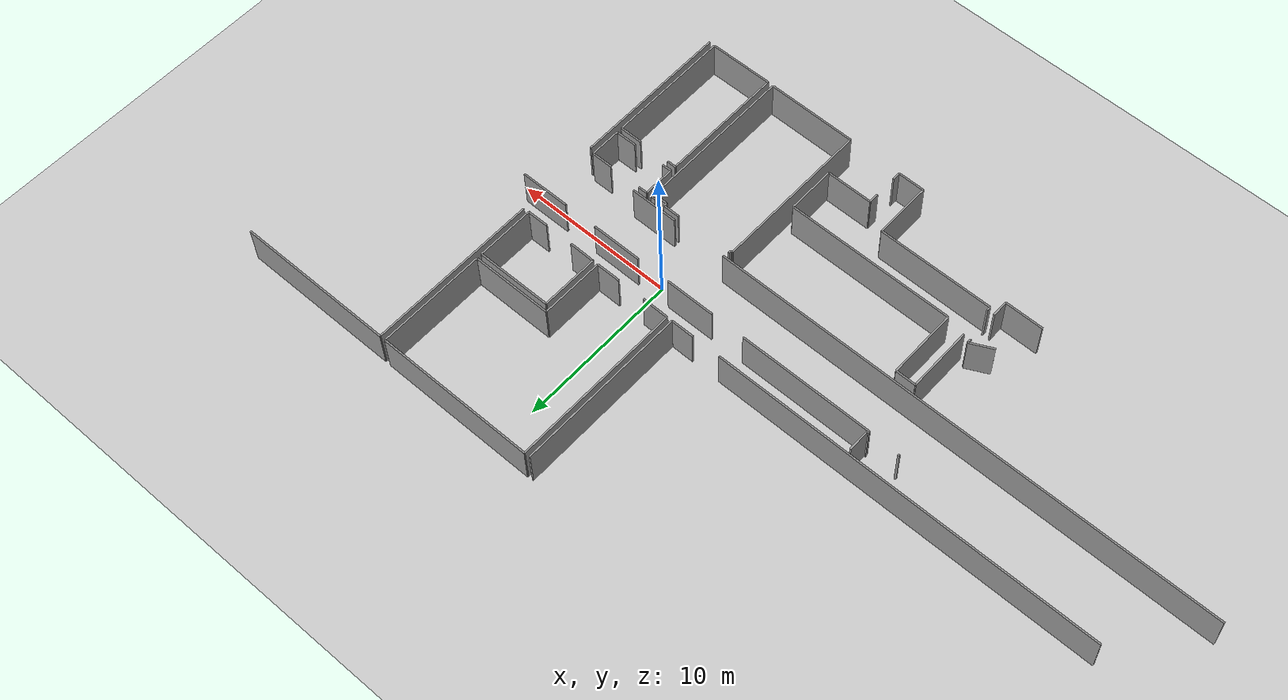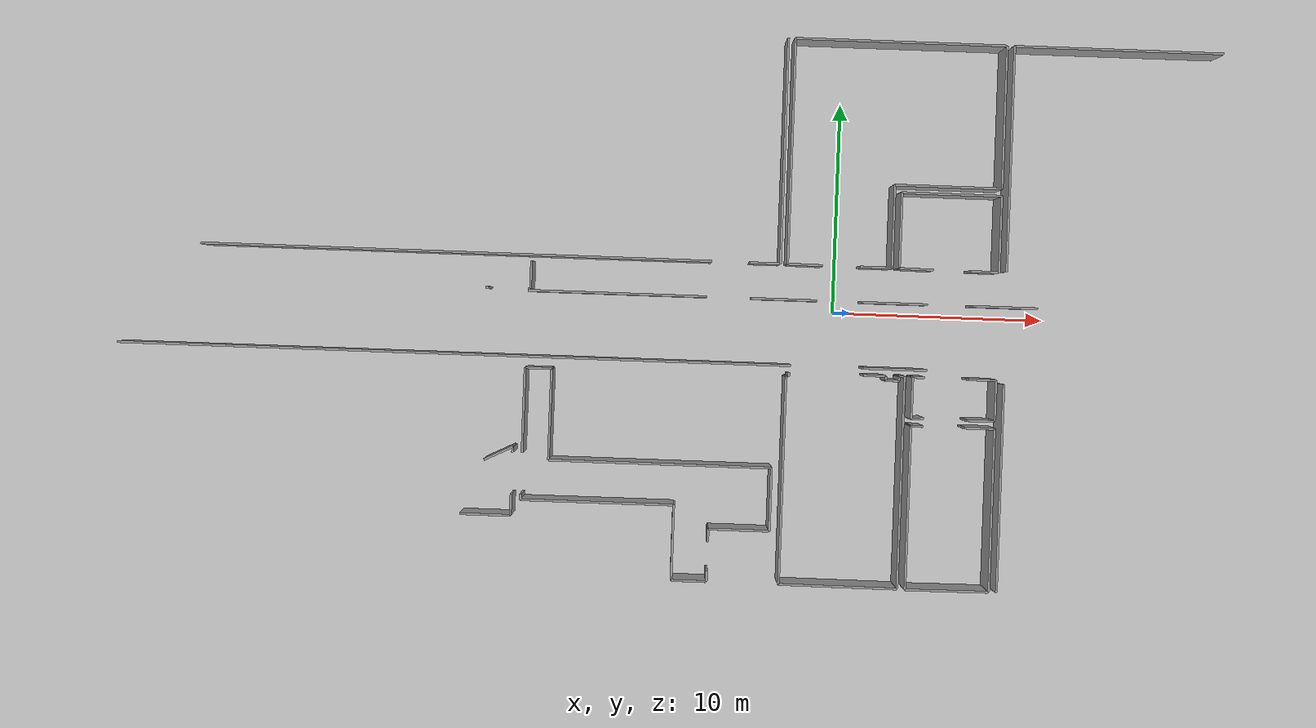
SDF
<sdf version="1.6">
 <world name="default">
  <model name="ground_plane">
   <static>1</static>
   <link name="link">
    <collision name="collision">
     <geometry><plane><normal>0 0 1</normal><size>100 100</size></plane></geometry>
     <surface><friction><ode><mu>100</mu><mu2>50</mu2></ode></friction></surface>
    </collision>
    <visual name="visual">
     <cast_shadows>0</cast_shadows>
     <geometry><plane><normal>0 0 1</normal><size>100 100</size></plane></geometry>
     <material>
      <script><uri>file://media/materials/scripts/gazebo.material</uri><name>Gazebo/Grey</name></script>
     </material>
    </visual>
   </link>
  </model>
  <model name="0510030965_A-40">
   <static>1</static>
   <link name="Wall_2">
    <collision name="Wall_2_Collision">
     <geometry><box><size>10.6120401762 0.1 2.5</size></box></geometry>
     <pose>5.30602008812 0 1.25 0 0 0</pose>
    </collision>
    <visual name="Wall_2_Visual">
     <pose>5.30602008812 0 1.25 0 0 0</pose>
     <geometry><box><size>10.6120401762 0.1 2.5</size></box></geometry>
     <material>
      <script><uri>file://media/materials/scripts/gazebo.material</uri><name>Gazebo/Grey</name></script>
      <ambient>1 1 1 1</ambient>
     </material>
    </visual>
    <pose>35.9684075527 -0.0 0 0 0 -1.57079632679</pose>
   </link>
   <link name="Wall_3">
    <collision name="Wall_3_Collision">
     <geometry><box><size>1.43537389052 0.1 2.5</size></box></geometry>
     <pose>0.717686945259 0 1.25 0 0 0</pose>
    </collision>
    <visual name="Wall_3_Visual">
     <pose>0.717686945259 0 1.25 0 0 0</pose>
     <geometry><box><size>1.43537389052 0.1 2.5</size></box></geometry>
     <material>
      <script><uri>file://media/materials/scripts/gazebo.material</uri><name>Gazebo/Grey</name></script>
      <ambient>1 1 1 1</ambient>
     </material>
    </visual>
    <pose>35.9684075527 -10.6120401762 0 0 0 3.14159265359</pose>
   </link>
   <link name="Wall_4">
    <collision name="Wall_4_Collision">
     <geometry><box><size>24.041115894 0.1 2.5</size></box></geometry>
     <pose>12.020557947 0 1.25 0 0 0</pose>
    </collision>
    <visual name="Wall_4_Visual">
     <pose>12.020557947 0 1.25 0 0 0</pose>
     <geometry><box><size>24.041115894 0.1 2.5</size></box></geometry>
     <material>
      <script><uri>file://media/materials/scripts/gazebo.material</uri><name>Gazebo/Grey</name></script>
      <ambient>1 1 1 1</ambient>
     </material>
    </visual>
    <pose>32.7479588079 -10.6120401762 0 0 0 3.14159265359</pose>
   </link>
   <link name="Wall_39">
    <collision name="Wall_39_Collision">
     <geometry><box><size>1.47790270101 0.1 2.5</size></box></geometry>
     <pose>0.738951350506 0 1.25 0 0 0</pose>
    </collision>
    <visual name="Wall_39_Visual">
     <pose>0.738951350506 0 1.25 0 0 0</pose>
     <geometry><box><size>1.47790270101 0.1 2.5</size></box></geometry>
     <material>
      <script><uri>file://media/materials/scripts/gazebo.material</uri><name>Gazebo/Grey</name></script>
      <ambient>1 1 1 1</ambient>
     </material>
    </visual>
    <pose>22.3818775158 -20.3123690526 0 0 0 0.457883984062</pose>
   </link>
   <link name="Wall_40">
    <collision name="Wall_40_Collision">
     <geometry><box><size>0.258783792363 0.1 2.5</size></box></geometry>
     <pose>0.129391896182 0 1.25 0 0 0</pose>
    </collision>
    <visual name="Wall_40_Visual">
     <pose>0.129391896182 0 1.25 0 0 0</pose>
     <geometry><box><size>0.258783792363 0.1 2.5</size></box></geometry>
     <material>
      <script><uri>file://media/materials/scripts/gazebo.material</uri><name>Gazebo/Grey</name></script>
      <ambient>1 1 1 1</ambient>
     </material>
    </visual>
    <pose>23.7075413 -19.6590606072 0 0 0 -1.57079632679</pose>
   </link>
   <link name="Wall_41">
    <collision name="Wall_41_Collision">
     <geometry><box><size>1.01024722868 0.1 2.5</size></box></geometry>
     <pose>0.505123614339 0 1.25 0 0 0</pose>
    </collision>
    <visual name="Wall_41_Visual">
     <pose>0.505123614339 0 1.25 0 0 0</pose>
     <geometry><box><size>1.01024722868 0.1 2.5</size></box></geometry>
     <material>
      <script><uri>file://media/materials/scripts/gazebo.material</uri><name>Gazebo/Grey</name></script>
      <ambient>1 1 1 1</ambient>
     </material>
    </visual>
    <pose>23.7075413 -21.8745952535 0 0 0 -1.57079632679</pose>
   </link>
   <link name="Wall_42">
    <collision name="Wall_42_Collision">
     <geometry><box><size>2.37844907496 0.1 2.5</size></box></geometry>
     <pose>1.18922453748 0 1.25 0 0 0</pose>
    </collision>
    <visual name="Wall_42_Visual">
     <pose>1.18922453748 0 1.25 0 0 0</pose>
     <geometry><box><size>2.37844907496 0.1 2.5</size></box></geometry>
     <material>
      <script><uri>file://media/materials/scripts/gazebo.material</uri><name>Gazebo/Grey</name></script>
      <ambient>1 1 1 1</ambient>
     </material>
    </visual>
    <pose>23.7075413 -22.8848424822 0 0 0 3.14159265359</pose>
   </link>
   <link name="Wall_47">
    <collision name="Wall_47_Collision">
     <geometry><box><size>0.250403159245 0.1 2.5</size></box></geometry>
     <pose>0.125201579622 0 1.25 0 0 0</pose>
    </collision>
    <visual name="Wall_47_Visual">
     <pose>0.125201579622 0 1.25 0 0 0</pose>
     <geometry><box><size>0.250403159245 0.1 2.5</size></box></geometry>
     <material>
      <script><uri>file://media/materials/scripts/gazebo.material</uri><name>Gazebo/Grey</name></script>
      <ambient>1 1 1 1</ambient>
     </material>
    </visual>
    <pose>24.1510799589 -22.1249984128 0 0 0 1.57079632679</pose>
   </link>
   <link name="Wall_48">
    <collision name="Wall_48_Collision">
     <geometry><box><size>3.9992127284 0.1 2.5</size></box></geometry>
     <pose>1.9996063642 0 1.25 0 0 0</pose>
    </collision>
    <visual name="Wall_48_Visual">
     <pose>1.9996063642 0 1.25 0 0 0</pose>
     <geometry><box><size>3.9992127284 0.1 2.5</size></box></geometry>
     <material>
      <script><uri>file://media/materials/scripts/gazebo.material</uri><name>Gazebo/Grey</name></script>
      <ambient>1 1 1 1</ambient>
     </material>
    </visual>
    <pose>24.1510799589 -19.9208919025 0 0 0 1.57079632679</pose>
   </link>
   <link name="Wall_49">
    <collision name="Wall_49_Collision">
     <geometry><box><size>1.25239673409 0.1 2.5</size></box></geometry>
     <pose>0.626198367046 0 1.25 0 0 0</pose>
    </collision>
    <visual name="Wall_49_Visual">
     <pose>0.626198367046 0 1.25 0 0 0</pose>
     <geometry><box><size>1.25239673409 0.1 2.5</size></box></geometry>
     <material>
      <script><uri>file://media/materials/scripts/gazebo.material</uri><name>Gazebo/Grey</name></script>
      <ambient>1 1 1 1</ambient>
     </material>
    </visual>
    <pose>24.1510799589 -15.9216791741 0 0 0 0.0</pose>
   </link>
   <link name="Wall_50">
    <collision name="Wall_50_Collision">
     <geometry><box><size>4.29520145264 0.1 2.5</size></box></geometry>
     <pose>2.14760072632 0 1.25 0 0 0</pose>
    </collision>
    <visual name="Wall_50_Visual">
     <pose>2.14760072632 0 1.25 0 0 0</pose>
     <geometry><box><size>4.29520145264 0.1 2.5</size></box></geometry>
     <material>
      <script><uri>file://media/materials/scripts/gazebo.material</uri><name>Gazebo/Grey</name></script>
      <ambient>1 1 1 1</ambient>
     </material>
    </visual>
    <pose>25.403476693 -15.9216791741 0 0 0 -1.57079632679</pose>
   </link>
   <link name="Wall_51">
    <collision name="Wall_51_Collision">
     <geometry><box><size>10.4906479753 0.1 2.5</size></box></geometry>
     <pose>5.24532398766 0 1.25 0 0 0</pose>
    </collision>
    <visual name="Wall_51_Visual">
     <pose>5.24532398766 0 1.25 0 0 0</pose>
     <geometry><box><size>10.4906479753 0.1 2.5</size></box></geometry>
     <material>
      <script><uri>file://media/materials/scripts/gazebo.material</uri><name>Gazebo/Grey</name></script>
      <ambient>1 1 1 1</ambient>
     </material>
    </visual>
    <pose>25.403476693 -20.2168806268 0 0 0 0.0</pose>
   </link>
   <link name="Wall_52">
    <collision name="Wall_52_Collision">
     <geometry><box><size>2.96750599977 0.1 2.5</size></box></geometry>
     <pose>1.48375299989 0 1.25 0 0 0</pose>
    </collision>
    <visual name="Wall_52_Visual">
     <pose>1.48375299989 0 1.25 0 0 0</pose>
     <geometry><box><size>2.96750599977 0.1 2.5</size></box></geometry>
     <material>
      <script><uri>file://media/materials/scripts/gazebo.material</uri><name>Gazebo/Grey</name></script>
      <ambient>1 1 1 1</ambient>
     </material>
    </visual>
    <pose>35.8941246683 -20.2168806268 0 0 0 -1.57079632679</pose>
   </link>
   <link name="Wall_53">
    <collision name="Wall_53_Collision">
     <geometry><box><size>2.87074778104 0.1 2.5</size></box></geometry>
     <pose>1.43537389052 0 1.25 0 0 0</pose>
    </collision>
    <visual name="Wall_53_Visual">
     <pose>1.43537389052 0 1.25 0 0 0</pose>
     <geometry><box><size>2.87074778104 0.1 2.5</size></box></geometry>
     <material>
      <script><uri>file://media/materials/scripts/gazebo.material</uri><name>Gazebo/Grey</name></script>
      <ambient>1 1 1 1</ambient>
     </material>
    </visual>
    <pose>35.8941246683 -23.1843866265 0 0 0 3.14159265359</pose>
   </link>
   <link name="Wall_54">
    <collision name="Wall_54_Collision">
     <geometry><box><size>0.607214963239 0.1 2.5</size></box></geometry>
     <pose>0.30360748162 0 1.25 0 0 0</pose>
    </collision>
    <visual name="Wall_54_Visual">
     <pose>0.30360748162 0 1.25 0 0 0</pose>
     <geometry><box><size>0.607214963239 0.1 2.5</size></box></geometry>
     <material>
      <script><uri>file://media/materials/scripts/gazebo.material</uri><name>Gazebo/Grey</name></script>
      <ambient>1 1 1 1</ambient>
     </material>
    </visual>
    <pose>33.0233768872 -23.1843866265 0 0 0 -1.57079632679</pose>
   </link>
   <link name="Wall_55">
    <collision name="Wall_55_Collision">
     <geometry><box><size>0.507917158711 0.1 2.5</size></box></geometry>
     <pose>0.253958579356 0 1.25 0 0 0</pose>
    </collision>
    <visual name="Wall_55_Visual">
     <pose>0.253958579356 0 1.25 0 0 0</pose>
     <geometry><box><size>0.507917158711 0.1 2.5</size></box></geometry>
     <material>
      <script><uri>file://media/materials/scripts/gazebo.material</uri><name>Gazebo/Grey</name></script>
      <ambient>1 1 1 1</ambient>
     </material>
    </visual>
    <pose>33.0233768872 -25.1497720722 0 0 0 -1.57079632679</pose>
   </link>
   <link name="Wall_56">
    <collision name="Wall_56_Collision">
     <geometry><box><size>1.65631785456 0.1 2.5</size></box></geometry>
     <pose>0.828158927279 0 1.25 0 0 0</pose>
    </collision>
    <visual name="Wall_56_Visual">
     <pose>0.828158927279 0 1.25 0 0 0</pose>
     <geometry><box><size>1.65631785456 0.1 2.5</size></box></geometry>
     <material>
      <script><uri>file://media/materials/scripts/gazebo.material</uri><name>Gazebo/Grey</name></script>
      <ambient>1 1 1 1</ambient>
     </material>
    </visual>
    <pose>33.0233768872 -25.6576892309 0 0 0 3.14159265359</pose>
   </link>
   <link name="Wall_57">
    <collision name="Wall_57_Collision">
     <geometry><box><size>3.53865884474 0.1 2.5</size></box></geometry>
     <pose>1.76932942237 0 1.25 0 0 0</pose>
    </collision>
    <visual name="Wall_57_Visual">
     <pose>1.76932942237 0 1.25 0 0 0</pose>
     <geometry><box><size>3.53865884474 0.1 2.5</size></box></geometry>
     <material>
      <script><uri>file://media/materials/scripts/gazebo.material</uri><name>Gazebo/Grey</name></script>
      <ambient>1 1 1 1</ambient>
     </material>
    </visual>
    <pose>31.3670590327 -25.6576892309 0 0 0 1.57079632679</pose>
   </link>
   <link name="Wall_58">
    <collision name="Wall_58_Collision">
     <geometry><box><size>7.21598154176 0.1 2.5</size></box></geometry>
     <pose>3.60799077088 0 1.25 0 0 0</pose>
    </collision>
    <visual name="Wall_58_Visual">
     <pose>3.60799077088 0 1.25 0 0 0</pose>
     <geometry><box><size>7.21598154176 0.1 2.5</size></box></geometry>
     <material>
      <script><uri>file://media/materials/scripts/gazebo.material</uri><name>Gazebo/Grey</name></script>
      <ambient>1 1 1 1</ambient>
     </material>
    </visual>
    <pose>31.3670590327 -22.1190303861 0 0 0 -3.14076559669</pose>
   </link>
   <link name="Wall_69">
    <collision name="Wall_69_Collision">
     <geometry><box><size>8.39180729623 0.1 2.5</size></box></geometry>
     <pose>4.19590364811 0 1.25 0 0 0</pose>
    </collision>
    <visual name="Wall_69_Visual">
     <pose>4.19590364811 0 1.25 0 0 0</pose>
     <geometry><box><size>8.39180729623 0.1 2.5</size></box></geometry>
     <material>
      <script><uri>file://media/materials/scripts/gazebo.material</uri><name>Gazebo/Grey</name></script>
      <ambient>1 1 1 1</ambient>
     </material>
    </visual>
    <pose>24.1677142458 -12.2852462763 0 0 0 0.0</pose>
   </link>
   <link name="Wall_70">
    <collision name="Wall_70_Collision">
     <geometry><box><size>3.08064454687 0.1 2.5</size></box></geometry>
     <pose>1.54032227344 0 1.25 0 0 0</pose>
    </collision>
    <visual name="Wall_70_Visual">
     <pose>1.54032227344 0 1.25 0 0 0</pose>
     <geometry><box><size>3.08064454687 0.1 2.5</size></box></geometry>
     <material>
      <script><uri>file://media/materials/scripts/gazebo.material</uri><name>Gazebo/Grey</name></script>
      <ambient>1 1 1 1</ambient>
     </material>
    </visual>
    <pose>34.6795677625 -12.2852462763 0 0 0 0.0</pose>
   </link>
   <link name="Wall_71">
    <collision name="Wall_71_Collision">
     <geometry><box><size>3.10591342552 0.1 2.5</size></box></geometry>
     <pose>1.55295671276 0 1.25 0 0 0</pose>
    </collision>
    <visual name="Wall_71_Visual">
     <pose>1.55295671276 0 1.25 0 0 0</pose>
     <geometry><box><size>3.10591342552 0.1 2.5</size></box></geometry>
     <material>
      <script><uri>file://media/materials/scripts/gazebo.material</uri><name>Gazebo/Grey</name></script>
      <ambient>1 1 1 1</ambient>
     </material>
    </visual>
    <pose>39.8640051808 -12.2852462763 0 0 0 0.0</pose>
   </link>
   <link name="Wall_72">
    <collision name="Wall_72_Collision">
     <geometry><box><size>3.0728988102 0.1 2.5</size></box></geometry>
     <pose>1.5364494051 0 1.25 0 0 0</pose>
    </collision>
    <visual name="Wall_72_Visual">
     <pose>1.5364494051 0 1.25 0 0 0</pose>
     <geometry><box><size>3.0728988102 0.1 2.5</size></box></geometry>
     <material>
      <script><uri>file://media/materials/scripts/gazebo.material</uri><name>Gazebo/Grey</name></script>
      <ambient>1 1 1 1</ambient>
     </material>
    </visual>
    <pose>45.0791715871 -12.2852462763 0 0 0 0.0</pose>
   </link>
   <link name="Wall_80">
    <collision name="Wall_80_Collision">
     <geometry><box><size>2.97639455005 0.1 2.5</size></box></geometry>
     <pose>1.48819727502 0 1.25 0 0 0</pose>
    </collision>
    <visual name="Wall_80_Visual">
     <pose>1.48819727502 0 1.25 0 0 0</pose>
     <geometry><box><size>2.97639455005 0.1 2.5</size></box></geometry>
     <material>
      <script><uri>file://media/materials/scripts/gazebo.material</uri><name>Gazebo/Grey</name></script>
      <ambient>1 1 1 1</ambient>
     </material>
    </visual>
    <pose>43.024138763 -15.37896969 0 0 0 3.14159265359</pose>
   </link>
   <link name="Wall_81">
    <collision name="Wall_81_Collision">
     <geometry><box><size>31.6743513581 0.1 2.5</size></box></geometry>
     <pose>15.8371756791 0 1.25 0 0 0</pose>
    </collision>
    <visual name="Wall_81_Visual">
     <pose>15.8371756791 0 1.25 0 0 0</pose>
     <geometry><box><size>31.6743513581 0.1 2.5</size></box></geometry>
     <material>
      <script><uri>file://media/materials/scripts/gazebo.material</uri><name>Gazebo/Grey</name></script>
      <ambient>1 1 1 1</ambient>
     </material>
    </visual>
    <pose>36.6320013206 -15.37896969 0 0 0 -3.14119978143</pose>
   </link>
   <link name="Wall_94">
    <collision name="Wall_94_Collision">
     <geometry><box><size>1.32134648839 0.1 2.5</size></box></geometry>
     <pose>0.660673244194 0 1.25 0 0 0</pose>
    </collision>
    <visual name="Wall_94_Visual">
     <pose>0.660673244194 0 1.25 0 0 0</pose>
     <geometry><box><size>1.32134648839 0.1 2.5</size></box></geometry>
     <material>
      <script><uri>file://media/materials/scripts/gazebo.material</uri><name>Gazebo/Grey</name></script>
      <ambient>1 1 1 1</ambient>
     </material>
    </visual>
    <pose>24.2745038284 -10.8806013739 0 0 0 -1.57079632679</pose>
   </link>
   <link name="Wall_95">
    <collision name="Wall_95_Collision">
     <geometry><box><size>0.123423869567 0.1 2.5</size></box></geometry>
     <pose>0.0617119347834 0 1.25 0 0 0</pose>
    </collision>
    <visual name="Wall_95_Visual">
     <pose>0.0617119347834 0 1.25 0 0 0</pose>
     <geometry><box><size>0.123423869567 0.1 2.5</size></box></geometry>
     <material>
      <script><uri>file://media/materials/scripts/gazebo.material</uri><name>Gazebo/Grey</name></script>
      <ambient>1 1 1 1</ambient>
     </material>
    </visual>
    <pose>24.2745038284 -12.2019478623 0 0 0 3.14159265359</pose>
   </link>
   <link name="Wall_96">
    <collision name="Wall_96_Collision">
     <geometry><box><size>0.123275965035 0.1 2.5</size></box></geometry>
     <pose>0.0616379825173 0 1.25 0 0 0</pose>
    </collision>
    <visual name="Wall_96_Visual">
     <pose>0.0616379825173 0 1.25 0 0 0</pose>
     <geometry><box><size>0.123275965035 0.1 2.5</size></box></geometry>
     <material>
      <script><uri>file://media/materials/scripts/gazebo.material</uri><name>Gazebo/Grey</name></script>
      <ambient>1 1 1 1</ambient>
     </material>
    </visual>
    <pose>22.3059439005 -12.2019478623 0 0 0 -3.0228591662</pose>
   </link>
   <link name="Wall_97">
    <collision name="Wall_97_Collision">
     <geometry><box><size>10.6121671555 0.1 2.5</size></box></geometry>
     <pose>5.30608357777 0 1.25 0 0 0</pose>
    </collision>
    <visual name="Wall_97_Visual">
     <pose>5.30608357777 0 1.25 0 0 0</pose>
     <geometry><box><size>10.6121671555 0.1 2.5</size></box></geometry>
     <material>
      <script><uri>file://media/materials/scripts/gazebo.material</uri><name>Gazebo/Grey</name></script>
      <ambient>1 1 1 1</ambient>
     </material>
    </visual>
    <pose>36.3049026704 -10.6121671555 0 0 0 1.57079632679</pose>
   </link>
   <link name="Wall_98">
    <collision name="Wall_98_Collision">
     <geometry><box><size>9.94616078118 0.1 2.5</size></box></geometry>
     <pose>4.97308039059 0 1.25 0 0 0</pose>
    </collision>
    <visual name="Wall_98_Visual">
     <pose>4.97308039059 0 1.25 0 0 0</pose>
     <geometry><box><size>9.94616078118 0.1 2.5</size></box></geometry>
     <material>
      <script><uri>file://media/materials/scripts/gazebo.material</uri><name>Gazebo/Grey</name></script>
      <ambient>1 1 1 1</ambient>
     </material>
    </visual>
    <pose>36.3049026704 -0.0 0 0 0 0.0</pose>
   </link>
   <link name="Wall_99">
    <collision name="Wall_99_Collision">
     <geometry><box><size>6.71898213401 0.1 2.5</size></box></geometry>
     <pose>3.35949106701 0 1.25 0 0 0</pose>
    </collision>
    <visual name="Wall_99_Visual">
     <pose>3.35949106701 0 1.25 0 0 0</pose>
     <geometry><box><size>6.71898213401 0.1 2.5</size></box></geometry>
     <material>
      <script><uri>file://media/materials/scripts/gazebo.material</uri><name>Gazebo/Grey</name></script>
      <ambient>1 1 1 1</ambient>
     </material>
    </visual>
    <pose>46.2510634516 -0.0 0 0 0 -1.57079632679</pose>
   </link>
   <link name="Wall_100">
    <collision name="Wall_100_Collision">
     <geometry><box><size>5.03206227064 0.1 2.5</size></box></geometry>
     <pose>2.51603113532 0 1.25 0 0 0</pose>
    </collision>
    <visual name="Wall_100_Visual">
     <pose>2.51603113532 0 1.25 0 0 0</pose>
     <geometry><box><size>5.03206227064 0.1 2.5</size></box></geometry>
     <material>
      <script><uri>file://media/materials/scripts/gazebo.material</uri><name>Gazebo/Grey</name></script>
      <ambient>1 1 1 1</ambient>
     </material>
    </visual>
    <pose>46.2510634516 -6.71898213401 0 0 0 3.14159265359</pose>
   </link>
   <link name="Wall_101">
    <collision name="Wall_101_Collision">
     <geometry><box><size>3.90524805404 0.1 2.5</size></box></geometry>
     <pose>1.95262402702 0 1.25 0 0 0</pose>
    </collision>
    <visual name="Wall_101_Visual">
     <pose>1.95262402702 0 1.25 0 0 0</pose>
     <geometry><box><size>3.90524805404 0.1 2.5</size></box></geometry>
     <material>
      <script><uri>file://media/materials/scripts/gazebo.material</uri><name>Gazebo/Grey</name></script>
      <ambient>1 1 1 1</ambient>
     </material>
    </visual>
    <pose>41.2190011809 -6.71898213401 0 0 0 -1.57079632679</pose>
   </link>
   <link name="Wall_102">
    <collision name="Wall_102_Collision">
     <geometry><box><size>1.49772072175 0.1 2.5</size></box></geometry>
     <pose>0.748860360875 0 1.25 0 0 0</pose>
    </collision>
    <visual name="Wall_102_Visual">
     <pose>0.748860360875 0 1.25 0 0 0</pose>
     <geometry><box><size>1.49772072175 0.1 2.5</size></box></geometry>
     <material>
      <script><uri>file://media/materials/scripts/gazebo.material</uri><name>Gazebo/Grey</name></script>
      <ambient>1 1 1 1</ambient>
     </material>
    </visual>
    <pose>41.2190011809 -10.6242301881 0 0 0 3.14159265359</pose>
   </link>
   <link name="Wall_103">
    <collision name="Wall_103_Collision">
     <geometry><box><size>1.66347243421 0.1 2.5</size></box></geometry>
     <pose>0.831736217104 0 1.25 0 0 0</pose>
    </collision>
    <visual name="Wall_103_Visual">
     <pose>0.831736217104 0 1.25 0 0 0</pose>
     <geometry><box><size>1.66347243421 0.1 2.5</size></box></geometry>
     <material>
      <script><uri>file://media/materials/scripts/gazebo.material</uri><name>Gazebo/Grey</name></script>
      <ambient>1 1 1 1</ambient>
     </material>
    </visual>
    <pose>37.9683313652 -10.6242301881 0 0 0 3.13434087232</pose>
   </link>
   <link name="Wall_104">
    <collision name="Wall_104_Collision">
     <geometry><box><size>3.56303886836 0.1 2.5</size></box></geometry>
     <pose>1.78151943418 0 1.25 0 0 0</pose>
    </collision>
    <visual name="Wall_104_Visual">
     <pose>1.78151943418 0 1.25 0 0 0</pose>
     <geometry><box><size>3.56303886836 0.1 2.5</size></box></geometry>
     <material>
      <script><uri>file://media/materials/scripts/gazebo.material</uri><name>Gazebo/Grey</name></script>
      <ambient>1 1 1 1</ambient>
     </material>
    </visual>
    <pose>41.561845263 -10.6267697738 0 0 0 1.57079632679</pose>
   </link>
   <link name="Wall_105">
    <collision name="Wall_105_Collision">
     <geometry><box><size>4.69251965005 0.1 2.5</size></box></geometry>
     <pose>2.34625982502 0 1.25 0 0 0</pose>
    </collision>
    <visual name="Wall_105_Visual">
     <pose>2.34625982502 0 1.25 0 0 0</pose>
     <geometry><box><size>4.69251965005 0.1 2.5</size></box></geometry>
     <material>
      <script><uri>file://media/materials/scripts/gazebo.material</uri><name>Gazebo/Grey</name></script>
      <ambient>1 1 1 1</ambient>
     </material>
    </visual>
    <pose>41.561845263 -7.06373090549 0 0 0 0.0</pose>
   </link>
   <link name="Wall_106">
    <collision name="Wall_106_Collision">
     <geometry><box><size>3.58830774701 0.1 2.5</size></box></geometry>
     <pose>1.7941538735 0 1.25 0 0 0</pose>
    </collision>
    <visual name="Wall_106_Visual">
     <pose>1.7941538735 0 1.25 0 0 0</pose>
     <geometry><box><size>3.58830774701 0.1 2.5</size></box></geometry>
     <material>
      <script><uri>file://media/materials/scripts/gazebo.material</uri><name>Gazebo/Grey</name></script>
      <ambient>1 1 1 1</ambient>
     </material>
    </visual>
    <pose>46.2543649131 -7.06373090549 0 0 0 -1.57079632679</pose>
   </link>
   <link name="Wall_107">
    <collision name="Wall_107_Collision">
     <geometry><box><size>1.31702919254 0.1 2.5</size></box></geometry>
     <pose>0.658514596269 0 1.25 0 0 0</pose>
    </collision>
    <visual name="Wall_107_Visual">
     <pose>0.658514596269 0 1.25 0 0 0</pose>
     <geometry><box><size>1.31702919254 0.1 2.5</size></box></geometry>
     <material>
      <script><uri>file://media/materials/scripts/gazebo.material</uri><name>Gazebo/Grey</name></script>
      <ambient>1 1 1 1</ambient>
     </material>
    </visual>
    <pose>46.2543649131 -10.6520386525 0 0 0 3.14159265359</pose>
   </link>
   <link name="Wall_108">
    <collision name="Wall_108_Collision">
     <geometry><box><size>1.60661372092 0.1 2.5</size></box></geometry>
     <pose>0.803306860462 0 1.25 0 0 0</pose>
    </collision>
    <visual name="Wall_108_Visual">
     <pose>0.803306860462 0 1.25 0 0 0</pose>
     <geometry><box><size>1.60661372092 0.1 2.5</size></box></geometry>
     <material>
      <script><uri>file://media/materials/scripts/gazebo.material</uri><name>Gazebo/Grey</name></script>
      <ambient>1 1 1 1</ambient>
     </material>
    </visual>
    <pose>43.1682602568 -10.6520386525 0 0 0 3.12586396895</pose>
   </link>
   <link name="Wall_109">
    <collision name="Wall_109_Collision">
     <geometry><box><size>9.97727070715 0.1 2.5</size></box></geometry>
     <pose>4.98863535357 0 1.25 0 0 0</pose>
    </collision>
    <visual name="Wall_109_Visual">
     <pose>4.98863535357 0 1.25 0 0 0</pose>
     <geometry><box><size>9.97727070715 0.1 2.5</size></box></geometry>
     <material>
      <script><uri>file://media/materials/scripts/gazebo.material</uri><name>Gazebo/Grey</name></script>
      <ambient>1 1 1 1</ambient>
     </material>
    </visual>
    <pose>41.9930669308 -25.6818152959 0 0 0 1.57079632679</pose>
   </link>
   <link name="Wall_110">
    <collision name="Wall_110_Collision">
     <geometry><box><size>0.250403159245 0.1 2.5</size></box></geometry>
     <pose>0.125201579622 0 1.25 0 0 0</pose>
    </collision>
    <visual name="Wall_110_Visual">
     <pose>0.125201579622 0 1.25 0 0 0</pose>
     <geometry><box><size>0.250403159245 0.1 2.5</size></box></geometry>
     <material>
      <script><uri>file://media/materials/scripts/gazebo.material</uri><name>Gazebo/Grey</name></script>
      <ambient>1 1 1 1</ambient>
     </material>
    </visual>
    <pose>41.9930669308 -15.7045445888 0 0 0 3.14159265359</pose>
   </link>
   <link name="Wall_111">
    <collision name="Wall_111_Collision">
     <geometry><box><size>0.20875395223 0.1 2.5</size></box></geometry>
     <pose>0.104376976115 0 1.25 0 0 0</pose>
    </collision>
    <visual name="Wall_111_Visual">
     <pose>0.104376976115 0 1.25 0 0 0</pose>
     <geometry><box><size>0.20875395223 0.1 2.5</size></box></geometry>
     <material>
      <script><uri>file://media/materials/scripts/gazebo.material</uri><name>Gazebo/Grey</name></script>
      <ambient>1 1 1 1</ambient>
     </material>
    </visual>
    <pose>41.7426637715 -15.7045445888 0 0 0 -1.57079632679</pose>
   </link>
   <link name="Wall_112">
    <collision name="Wall_112_Collision">
     <geometry><box><size>0.63464248981 0.1 2.5</size></box></geometry>
     <pose>0.317321244905 0 1.25 0 0 0</pose>
    </collision>
    <visual name="Wall_112_Visual">
     <pose>0.317321244905 0 1.25 0 0 0</pose>
     <geometry><box><size>0.63464248981 0.1 2.5</size></box></geometry>
     <material>
      <script><uri>file://media/materials/scripts/gazebo.material</uri><name>Gazebo/Grey</name></script>
      <ambient>1 1 1 1</ambient>
     </material>
    </visual>
    <pose>41.7426637715 -15.913298541 0 0 0 3.14159265359</pose>
   </link>
   <link name="Wall_113">
    <collision name="Wall_113_Collision">
     <geometry><box><size>0.200373319112 0.1 2.5</size></box></geometry>
     <pose>0.100186659556 0 1.25 0 0 0</pose>
    </collision>
    <visual name="Wall_113_Visual">
     <pose>0.100186659556 0 1.25 0 0 0</pose>
     <geometry><box><size>0.200373319112 0.1 2.5</size></box></geometry>
     <material>
      <script><uri>file://media/materials/scripts/gazebo.material</uri><name>Gazebo/Grey</name></script>
      <ambient>1 1 1 1</ambient>
     </material>
    </visual>
    <pose>41.1080212817 -15.913298541 0 0 0 1.57079632679</pose>
   </link>
   <link name="Wall_114">
    <collision name="Wall_114_Collision">
     <geometry><box><size>1.03526214874 0.1 2.5</size></box></geometry>
     <pose>0.517631074372 0 1.25 0 0 0</pose>
    </collision>
    <visual name="Wall_114_Visual">
     <pose>0.517631074372 0 1.25 0 0 0</pose>
     <geometry><box><size>1.03526214874 0.1 2.5</size></box></geometry>
     <material>
      <script><uri>file://media/materials/scripts/gazebo.material</uri><name>Gazebo/Grey</name></script>
      <ambient>1 1 1 1</ambient>
     </material>
    </visual>
    <pose>41.1080212817 -15.7129252219 0 0 0 3.14159265359</pose>
   </link>
   <link name="Wall_115">
    <collision name="Wall_115_Collision">
     <geometry><box><size>0.182469239267 0.1 2.5</size></box></geometry>
     <pose>0.0912346196335 0 1.25 0 0 0</pose>
    </collision>
    <visual name="Wall_115_Visual">
     <pose>0.0912346196335 0 1.25 0 0 0</pose>
     <geometry><box><size>0.182469239267 0.1 2.5</size></box></geometry>
     <material>
      <script><uri>file://media/materials/scripts/gazebo.material</uri><name>Gazebo/Grey</name></script>
      <ambient>1 1 1 1</ambient>
     </material>
    </visual>
    <pose>36.5432427971 -15.7129252219 0 0 0 -1.57079632679</pose>
   </link>
   <link name="Wall_116">
    <collision name="Wall_116_Collision">
     <geometry><box><size>0.124820641753 0.1 2.5</size></box></geometry>
     <pose>0.0624103208767 0 1.25 0 0 0</pose>
    </collision>
    <visual name="Wall_116_Visual">
     <pose>0.0624103208767 0 1.25 0 0 0</pose>
     <geometry><box><size>0.124820641753 0.1 2.5</size></box></geometry>
     <material>
      <script><uri>file://media/materials/scripts/gazebo.material</uri><name>Gazebo/Grey</name></script>
      <ambient>1 1 1 1</ambient>
     </material>
    </visual>
    <pose>36.5432427971 -15.8953944612 0 0 0 3.14159265359</pose>
   </link>
   <link name="Wall_117">
    <collision name="Wall_117_Collision">
     <geometry><box><size>9.76673904486 0.1 2.5</size></box></geometry>
     <pose>4.88336952243 0 1.25 0 0 0</pose>
    </collision>
    <visual name="Wall_117_Visual">
     <pose>4.88336952243 0 1.25 0 0 0</pose>
     <geometry><box><size>9.76673904486 0.1 2.5</size></box></geometry>
     <material>
      <script><uri>file://media/materials/scripts/gazebo.material</uri><name>Gazebo/Grey</name></script>
      <ambient>1 1 1 1</ambient>
     </material>
    </visual>
    <pose>36.4184221553 -15.8953944612 0 0 0 -1.57079632679</pose>
   </link>
   <link name="Wall_118">
    <collision name="Wall_118_Collision">
     <geometry><box><size>5.5746795195 0.1 2.5</size></box></geometry>
     <pose>2.78733975975 0 1.25 0 0 0</pose>
    </collision>
    <visual name="Wall_118_Visual">
     <pose>2.78733975975 0 1.25 0 0 0</pose>
     <geometry><box><size>5.5746795195 0.1 2.5</size></box></geometry>
     <material>
      <script><uri>file://media/materials/scripts/gazebo.material</uri><name>Gazebo/Grey</name></script>
      <ambient>1 1 1 1</ambient>
     </material>
    </visual>
    <pose>36.4184221553 -25.662133506 0 0 0 -0.00353057619189</pose>
   </link>
   <link name="Wall_119">
    <collision name="Wall_119_Collision">
     <geometry><box><size>1.95700481252 0.1 2.5</size></box></geometry>
     <pose>0.978502406258 0 1.25 0 0 0</pose>
    </collision>
    <visual name="Wall_119_Visual">
     <pose>0.978502406258 0 1.25 0 0 0</pose>
     <geometry><box><size>1.95700481252 0.1 2.5</size></box></geometry>
     <material>
      <script><uri>file://media/materials/scripts/gazebo.material</uri><name>Gazebo/Grey</name></script>
      <ambient>1 1 1 1</ambient>
     </material>
    </visual>
    <pose>42.375401572 -17.6766599368 0 0 0 1.57079632679</pose>
   </link>
   <link name="Wall_120">
    <collision name="Wall_120_Collision">
     <geometry><box><size>0.55566137163 0.1 2.5</size></box></geometry>
     <pose>0.277830685815 0 1.25 0 0 0</pose>
    </collision>
    <visual name="Wall_120_Visual">
     <pose>0.277830685815 0 1.25 0 0 0</pose>
     <geometry><box><size>0.55566137163 0.1 2.5</size></box></geometry>
     <material>
      <script><uri>file://media/materials/scripts/gazebo.material</uri><name>Gazebo/Grey</name></script>
      <ambient>1 1 1 1</ambient>
     </material>
    </visual>
    <pose>42.375401572 -15.7196551242 0 0 0 0.0</pose>
   </link>
   <link name="Wall_121">
    <collision name="Wall_121_Collision">
     <geometry><box><size>0.587108790689 0.1 2.5</size></box></geometry>
     <pose>0.293554395345 0 1.25 0 0 0</pose>
    </collision>
    <visual name="Wall_121_Visual">
     <pose>0.293554395345 0 1.25 0 0 0</pose>
     <geometry><box><size>0.587108790689 0.1 2.5</size></box></geometry>
     <material>
      <script><uri>file://media/materials/scripts/gazebo.material</uri><name>Gazebo/Grey</name></script>
      <ambient>1 1 1 1</ambient>
     </material>
    </visual>
    <pose>42.9615379732 -17.6428834457 0 0 0 -3.08403066302</pose>
   </link>
   <link name="Wall_122">
    <collision name="Wall_122_Collision">
     <geometry><box><size>1.30750574581 0.1 2.5</size></box></geometry>
     <pose>0.653752872906 0 1.25 0 0 0</pose>
    </collision>
    <visual name="Wall_122_Visual">
     <pose>0.653752872906 0 1.25 0 0 0</pose>
     <geometry><box><size>1.30750574581 0.1 2.5</size></box></geometry>
     <material>
      <script><uri>file://media/materials/scripts/gazebo.material</uri><name>Gazebo/Grey</name></script>
      <ambient>1 1 1 1</ambient>
     </material>
    </visual>
    <pose>44.9947303595 -15.7322260739 0 0 0 0.0</pose>
   </link>
   <link name="Wall_123">
    <collision name="Wall_123_Collision">
     <geometry><box><size>1.91599050195 0.1 2.5</size></box></geometry>
     <pose>0.957995250975 0 1.25 0 0 0</pose>
    </collision>
    <visual name="Wall_123_Visual">
     <pose>0.957995250975 0 1.25 0 0 0</pose>
     <geometry><box><size>1.91599050195 0.1 2.5</size></box></geometry>
     <material>
      <script><uri>file://media/materials/scripts/gazebo.material</uri><name>Gazebo/Grey</name></script>
      <ambient>1 1 1 1</ambient>
     </material>
    </visual>
    <pose>46.3022361053 -15.7322260739 0 0 0 -1.57079632679</pose>
   </link>
   <link name="Wall_124">
    <collision name="Wall_124_Collision">
     <geometry><box><size>1.30757372242 0.1 2.5</size></box></geometry>
     <pose>0.653786861211 0 1.25 0 0 0</pose>
    </collision>
    <visual name="Wall_124_Visual">
     <pose>0.653786861211 0 1.25 0 0 0</pose>
     <geometry><box><size>1.30757372242 0.1 2.5</size></box></geometry>
     <material>
      <script><uri>file://media/materials/scripts/gazebo.material</uri><name>Gazebo/Grey</name></script>
      <ambient>1 1 1 1</ambient>
     </material>
    </visual>
    <pose>46.3022361053 -17.6482165759 0 0 0 -3.13139586221</pose>
   </link>
   <link name="Wall_125">
    <collision name="Wall_125_Collision">
     <geometry><box><size>7.69177047224 0.1 2.5</size></box></geometry>
     <pose>3.84588523612 0 1.25 0 0 0</pose>
    </collision>
    <visual name="Wall_125_Visual">
     <pose>3.84588523612 0 1.25 0 0 0</pose>
     <geometry><box><size>7.69177047224 0.1 2.5</size></box></geometry>
     <material>
      <script><uri>file://media/materials/scripts/gazebo.material</uri><name>Gazebo/Grey</name></script>
      <ambient>1 1 1 1</ambient>
     </material>
    </visual>
    <pose>42.3646083324 -25.7018780237 0 0 0 1.57079632679</pose>
   </link>
   <link name="Wall_126">
    <collision name="Wall_126_Collision">
     <geometry><box><size>0.560994501797 0.1 2.5</size></box></geometry>
     <pose>0.280497250898 0 1.25 0 0 0</pose>
    </collision>
    <visual name="Wall_126_Visual">
     <pose>0.280497250898 0 1.25 0 0 0</pose>
     <geometry><box><size>0.560994501797 0.1 2.5</size></box></geometry>
     <material>
      <script><uri>file://media/materials/scripts/gazebo.material</uri><name>Gazebo/Grey</name></script>
      <ambient>1 1 1 1</ambient>
     </material>
    </visual>
    <pose>42.3646083324 -18.0101075515 0 0 0 0.0</pose>
   </link>
   <link name="Wall_127">
    <collision name="Wall_127_Collision">
     <geometry><box><size>1.40781938466 0.1 2.5</size></box></geometry>
     <pose>0.703909692329 0 1.25 0 0 0</pose>
    </collision>
    <visual name="Wall_127_Visual">
     <pose>0.703909692329 0 1.25 0 0 0</pose>
     <geometry><box><size>1.40781938466 0.1 2.5</size></box></geometry>
     <material>
      <script><uri>file://media/materials/scripts/gazebo.material</uri><name>Gazebo/Grey</name></script>
      <ambient>1 1 1 1</ambient>
     </material>
    </visual>
    <pose>44.8944167206 -18.0101075515 0 0 0 0.0</pose>
   </link>
   <link name="Wall_128">
    <collision name="Wall_128_Collision">
     <geometry><box><size>7.66662857288 0.1 2.5</size></box></geometry>
     <pose>3.83331428644 0 1.25 0 0 0</pose>
    </collision>
    <visual name="Wall_128_Visual">
     <pose>3.83331428644 0 1.25 0 0 0</pose>
     <geometry><box><size>7.66662857288 0.1 2.5</size></box></geometry>
     <material>
      <script><uri>file://media/materials/scripts/gazebo.material</uri><name>Gazebo/Grey</name></script>
      <ambient>1 1 1 1</ambient>
     </material>
    </visual>
    <pose>46.3022361053 -18.0101075515 0 0 0 -1.57079632679</pose>
   </link>
   <link name="Wall_129">
    <collision name="Wall_129_Collision">
     <geometry><box><size>3.93770803807 0.1 2.5</size></box></geometry>
     <pose>1.96885401904 0 1.25 0 0 0</pose>
    </collision>
    <visual name="Wall_129_Visual">
     <pose>1.96885401904 0 1.25 0 0 0</pose>
     <geometry><box><size>3.93770803807 0.1 2.5</size></box></geometry>
     <material>
      <script><uri>file://media/materials/scripts/gazebo.material</uri><name>Gazebo/Grey</name></script>
      <ambient>1 1 1 1</ambient>
     </material>
    </visual>
    <pose>46.3022361053 -25.6767361243 0 0 0 -3.13520770327</pose>
   </link>
   <link name="Wall_131">
    <collision name="Wall_131_Collision">
     <geometry><box><size>9.79746803296 0.1 2.5</size></box></geometry>
     <pose>4.89873401648 0 1.25 0 0 0</pose>
    </collision>
    <visual name="Wall_131_Visual">
     <pose>4.89873401648 0 1.25 0 0 0</pose>
     <geometry><box><size>9.79746803296 0.1 2.5</size></box></geometry>
     <material>
      <script><uri>file://media/materials/scripts/gazebo.material</uri><name>Gazebo/Grey</name></script>
      <ambient>1 1 1 1</ambient>
     </material>
    </visual>
    <pose>46.6620954122 -25.6943862456 0 0 0 1.57079632679</pose>
   </link>
   <link name="Wall_244">
    <collision name="Wall_244_Collision">
     <geometry><box><size>10.6108973626 0.1 2.5</size></box></geometry>
     <pose>5.30544868132 0 1.25 0 0 0</pose>
    </collision>
    <visual name="Wall_244_Visual">
     <pose>5.30544868132 0 1.25 0 0 0</pose>
     <geometry><box><size>10.6108973626 0.1 2.5</size></box></geometry>
     <material>
      <script><uri>file://media/materials/scripts/gazebo.material</uri><name>Gazebo/Grey</name></script>
      <ambient>1 1 1 1</ambient>
     </material>
    </visual>
    <pose>46.6029230632 -10.6172463271 0 0 0 1.57079632679</pose>
   </link>
   <link name="Wall_245">
    <collision name="Wall_245_Collision">
     <geometry><box><size>9.84445037014 0.1 2.5</size></box></geometry>
     <pose>4.92222518507 0 1.25 0 0 0</pose>
    </collision>
    <visual name="Wall_245_Visual">
     <pose>4.92222518507 0 1.25 0 0 0</pose>
     <geometry><box><size>9.84445037014 0.1 2.5</size></box></geometry>
     <material>
      <script><uri>file://media/materials/scripts/gazebo.material</uri><name>Gazebo/Grey</name></script>
      <ambient>1 1 1 1</ambient>
     </material>
    </visual>
    <pose>46.6029230632 -0.00634896448389 0 0 0 0.0</pose>
   </link>
   <pose>-38.7 12.8518780237 0 0 0 0</pose>
  </model>
 </world>
</sdf>
